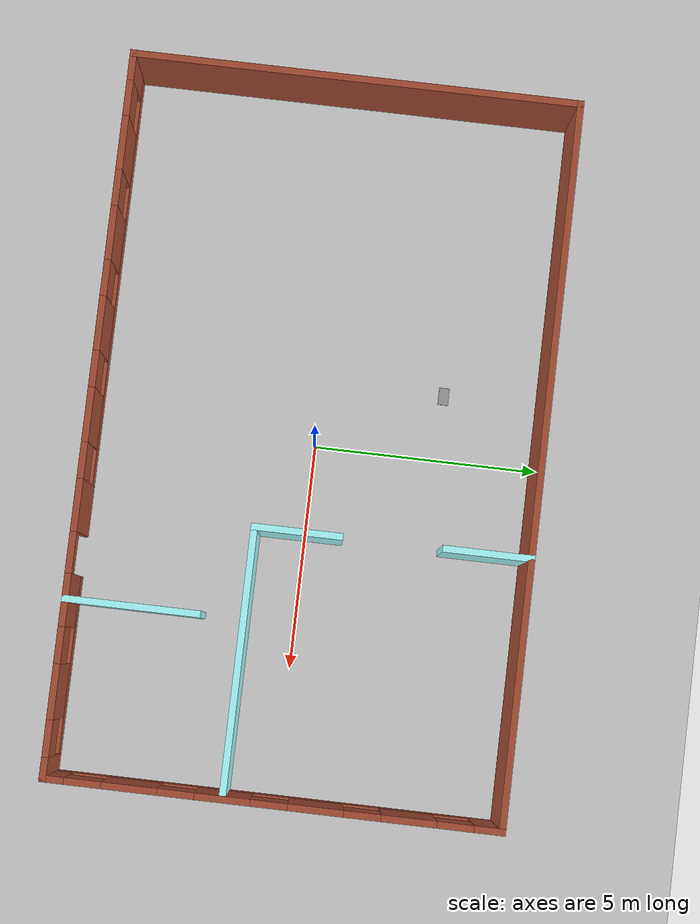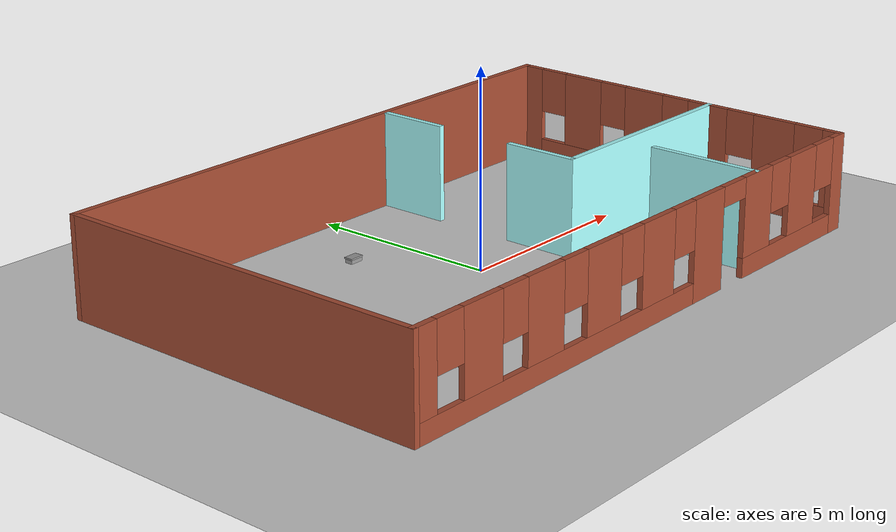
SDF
<sdf version="1.6">
 <world name="default">
  <model name="ground_plane">
   <static>1</static>
   <link name="link">
    <collision name="collision">
     <geometry><plane><normal>0 0 1</normal><size>100 100</size></plane></geometry>
     <surface><friction><ode><mu>100</mu><mu2>50</mu2></ode></friction></surface>
    </collision>
    <visual name="visual">
     <cast_shadows>0</cast_shadows>
     <geometry><plane><normal>0 0 1</normal><size>100 100</size></plane></geometry>
     <material>
      <script><uri>file://media/materials/scripts/gazebo.material</uri><name>Gazebo/Grey</name></script>
     </material>
    </visual>
   </link>
  </model>
  <model name="room1610">
   <link name="Wall_0">
    <collision name="Wall_0_Collision">
     <geometry><box><size>10 0.15 2.5</size></box></geometry>
     <pose>0 0 1.25 0 -0 0</pose>
    </collision>
    <visual name="Wall_0_Visual">
     <pose>0 0 1.25 0 -0 0</pose>
     <geometry><box><size>10 0.15 2.5</size></box></geometry>
     <material>
      <script><uri>file://media/materials/scripts/gazebo.material</uri><name>Gazebo/Bricks</name></script>
      <ambient>1 1 1 1</ambient>
     </material>
     <meta><layer>0</layer></meta>
    </visual>
    <pose>-7.925 0 0 0 0 -1.5708</pose>
   </link>
   <link name="Wall_11">
    <collision name="Wall_11_Collision">
     <geometry><box><size>3 0.15 2.5</size></box></geometry>
     <pose>0 0 1.25 0 -0 0</pose>
    </collision>
    <visual name="Wall_11_Visual">
     <pose>0 0 1.25 0 -0 0</pose>
     <geometry><box><size>3 0.15 2.5</size></box></geometry>
     <material>
      <script><uri>file://media/materials/scripts/gazebo.material</uri><name>Gazebo/Grey</name></script>
      <ambient>0.666667 1 1 1</ambient>
     </material>
     <meta><layer>0</layer></meta>
    </visual>
    <pose>4.075 -3.5 0 0 0 -1.5708</pose>
   </link>
   <link name="Wall_13">
    <collision name="Wall_13_Collision">
     <geometry><box><size>2 0.15 2.5</size></box></geometry>
     <pose>0 0 1.25 0 -0 0</pose>
    </collision>
    <visual name="Wall_13_Visual">
     <pose>0 0 1.25 0 -0 0</pose>
     <geometry><box><size>2 0.15 2.5</size></box></geometry>
     <material>
      <script><uri>file://media/materials/scripts/gazebo.material</uri><name>Gazebo/Grey</name></script>
      <ambient>0.666667 1 1 1</ambient>
     </material>
     <meta><layer>0</layer></meta>
    </visual>
    <pose>2.075 -0.149999 0 0 0 -1.5708</pose>
   </link>
   <link name="Wall_14">
    <collision name="Wall_14_Collision">
     <geometry><box><size>6 0.15 2.5</size></box></geometry>
     <pose>0 0 1.25 0 -0 0</pose>
    </collision>
    <visual name="Wall_14_Visual">
     <pose>0 0 1.25 0 -0 0</pose>
     <geometry><box><size>6 0.15 2.5</size></box></geometry>
     <material>
      <script><uri>file://media/materials/scripts/gazebo.material</uri><name>Gazebo/Grey</name></script>
      <ambient>0.666667 1 1 1</ambient>
     </material>
     <meta><layer>0</layer></meta>
    </visual>
    <pose>5 -1.075 0 0 -0 0</pose>
   </link>
   <link name="Wall_2">
    <collision name="Wall_2_Collision">
     <geometry><box><size>16 0.15 2.5</size></box></geometry>
     <pose>0 0 1.25 0 -0 0</pose>
    </collision>
    <visual name="Wall_2_Visual">
     <pose>0 0 1.25 0 -0 0</pose>
     <geometry><box><size>16 0.15 2.5</size></box></geometry>
     <material>
      <script><uri>file://media/materials/scripts/gazebo.material</uri><name>Gazebo/Bricks</name></script>
      <ambient>1 1 1 1</ambient>
     </material>
     <meta><layer>0</layer></meta>
    </visual>
    <pose>0 4.925 0 0 -0 0</pose>
   </link>
   <link name="Wall_4">
    <pose>7.925 0 0 0 0 -1.5708</pose>
    <visual name="Wall_4_Visual_0">
     <pose>-4.6625 0 1.25 0 -0 0</pose>
     <geometry><box><size>0.675 0.15 2.5</size></box></geometry>
     <material>
      <script><uri>file://media/materials/scripts/gazebo.material</uri><name>Gazebo/Bricks</name></script>
      <ambient>1 1 1 1</ambient>
     </material>
     <meta><layer>0</layer></meta>
    </visual>
    <collision name="Wall_4_Collision_0">
     <geometry><box><size>0.675 0.15 2.5</size></box></geometry>
     <pose>-4.6625 0 1.25 0 -0 0</pose>
    </collision>
    <visual name="Wall_4_Visual_1">
     <pose>0.3375 0 0.25 0 -0 0</pose>
     <geometry><box><size>9.325 0.15 0.5</size></box></geometry>
     <material>
      <script><uri>file://media/materials/scripts/gazebo.material</uri><name>Gazebo/Bricks</name></script>
      <ambient>1 1 1 1</ambient>
     </material>
     <meta><layer>0</layer></meta>
    </visual>
    <collision name="Wall_4_Collision_1">
     <geometry><box><size>9.325 0.15 0.5</size></box></geometry>
     <pose>0.3375 0 0.25 0 -0 0</pose>
    </collision>
    <visual name="Wall_4_Visual_2">
     <pose>-2.925 0 1.5 0 -0 0</pose>
     <geometry><box><size>1.2 0.15 2</size></box></geometry>
     <material>
      <script><uri>file://media/materials/scripts/gazebo.material</uri><name>Gazebo/Bricks</name></script>
      <ambient>1 1 1 1</ambient>
     </material>
     <meta><layer>0</layer></meta>
    </visual>
    <collision name="Wall_4_Collision_2">
     <geometry><box><size>1.2 0.15 2</size></box></geometry>
     <pose>-2.925 0 1.5 0 -0 0</pose>
    </collision>
    <visual name="Wall_4_Visual_3">
     <pose>-0.925 0 1.5 0 -0 0</pose>
     <geometry><box><size>1.2 0.15 2</size></box></geometry>
     <material>
      <script><uri>file://media/materials/scripts/gazebo.material</uri><name>Gazebo/Bricks</name></script>
      <ambient>1 1 1 1</ambient>
     </material>
     <meta><layer>0</layer></meta>
    </visual>
    <collision name="Wall_4_Collision_3">
     <geometry><box><size>1.2 0.15 2</size></box></geometry>
     <pose>-0.925 0 1.5 0 -0 0</pose>
    </collision>
    <visual name="Wall_4_Visual_4">
     <pose>1.075 0 1.5 0 -0 0</pose>
     <geometry><box><size>1.2 0.15 2</size></box></geometry>
     <material>
      <script><uri>file://media/materials/scripts/gazebo.material</uri><name>Gazebo/Bricks</name></script>
      <ambient>1 1 1 1</ambient>
     </material>
     <meta><layer>0</layer></meta>
    </visual>
    <collision name="Wall_4_Collision_4">
     <geometry><box><size>1.2 0.15 2</size></box></geometry>
     <pose>1.075 0 1.5 0 -0 0</pose>
    </collision>
    <visual name="Wall_4_Visual_5">
     <pose>3.075 0 1.5 0 -0 0</pose>
     <geometry><box><size>1.2 0.15 2</size></box></geometry>
     <material>
      <script><uri>file://media/materials/scripts/gazebo.material</uri><name>Gazebo/Bricks</name></script>
      <ambient>1 1 1 1</ambient>
     </material>
     <meta><layer>0</layer></meta>
    </visual>
    <collision name="Wall_4_Collision_5">
     <geometry><box><size>1.2 0.15 2</size></box></geometry>
     <pose>3.075 0 1.5 0 -0 0</pose>
    </collision>
    <visual name="Wall_4_Visual_6">
     <pose>4.7375 0 1.5 0 -0 0</pose>
     <geometry><box><size>0.525 0.15 2</size></box></geometry>
     <material>
      <script><uri>file://media/materials/scripts/gazebo.material</uri><name>Gazebo/Bricks</name></script>
      <ambient>1 1 1 1</ambient>
     </material>
     <meta><layer>0</layer></meta>
    </visual>
    <collision name="Wall_4_Collision_6">
     <geometry><box><size>0.525 0.15 2</size></box></geometry>
     <pose>4.7375 0 1.5 0 -0 0</pose>
    </collision>
    <visual name="Wall_4_Visual_7">
     <pose>-3.925 0 1.9 0 -0 0</pose>
     <geometry><box><size>0.8 0.15 1.2</size></box></geometry>
     <material>
      <script><uri>file://media/materials/scripts/gazebo.material</uri><name>Gazebo/Bricks</name></script>
      <ambient>1 1 1 1</ambient>
     </material>
     <meta><layer>0</layer></meta>
    </visual>
    <collision name="Wall_4_Collision_7">
     <geometry><box><size>0.8 0.15 1.2</size></box></geometry>
     <pose>-3.925 0 1.9 0 -0 0</pose>
    </collision>
    <visual name="Wall_4_Visual_8">
     <pose>-1.925 0 1.9 0 -0 0</pose>
     <geometry><box><size>0.8 0.15 1.2</size></box></geometry>
     <material>
      <script><uri>file://media/materials/scripts/gazebo.material</uri><name>Gazebo/Bricks</name></script>
      <ambient>1 1 1 1</ambient>
     </material>
     <meta><layer>0</layer></meta>
    </visual>
    <collision name="Wall_4_Collision_8">
     <geometry><box><size>0.8 0.15 1.2</size></box></geometry>
     <pose>-1.925 0 1.9 0 -0 0</pose>
    </collision>
    <visual name="Wall_4_Visual_9">
     <pose>0.075 0 1.9 0 -0 0</pose>
     <geometry><box><size>0.8 0.15 1.2</size></box></geometry>
     <material>
      <script><uri>file://media/materials/scripts/gazebo.material</uri><name>Gazebo/Bricks</name></script>
      <ambient>1 1 1 1</ambient>
     </material>
     <meta><layer>0</layer></meta>
    </visual>
    <collision name="Wall_4_Collision_9">
     <geometry><box><size>0.8 0.15 1.2</size></box></geometry>
     <pose>0.075 0 1.9 0 -0 0</pose>
    </collision>
    <visual name="Wall_4_Visual_10">
     <pose>2.075 0 1.9 0 -0 0</pose>
     <geometry><box><size>0.8 0.15 1.2</size></box></geometry>
     <material>
      <script><uri>file://media/materials/scripts/gazebo.material</uri><name>Gazebo/Bricks</name></script>
      <ambient>1 1 1 1</ambient>
     </material>
     <meta><layer>0</layer></meta>
    </visual>
    <collision name="Wall_4_Collision_10">
     <geometry><box><size>0.8 0.15 1.2</size></box></geometry>
     <pose>2.075 0 1.9 0 -0 0</pose>
    </collision>
    <visual name="Wall_4_Visual_11">
     <pose>4.075 0 1.9 0 -0 0</pose>
     <geometry><box><size>0.8 0.15 1.2</size></box></geometry>
     <material>
      <script><uri>file://media/materials/scripts/gazebo.material</uri><name>Gazebo/Bricks</name></script>
      <ambient>1 1 1 1</ambient>
     </material>
     <meta><layer>0</layer></meta>
    </visual>
    <collision name="Wall_4_Collision_11">
     <geometry><box><size>0.8 0.15 1.2</size></box></geometry>
     <pose>4.075 0 1.9 0 -0 0</pose>
    </collision>
   </link>
   <link name="Wall_5">
    <pose>0 -4.925 0 0 -0 3.14159</pose>
    <visual name="Wall_5_Visual_0">
     <pose>-7.7375 0 1.25 0 -0 0</pose>
     <geometry><box><size>0.525 0.15 2.5</size></box></geometry>
     <material>
      <script><uri>file://media/materials/scripts/gazebo.material</uri><name>Gazebo/Bricks</name></script>
      <ambient>1 1 1 1</ambient>
     </material>
     <meta><layer>0</layer></meta>
    </visual>
    <collision name="Wall_5_Collision_0">
     <geometry><box><size>0.525 0.15 2.5</size></box></geometry>
     <pose>-7.7375 0 1.25 0 -0 0</pose>
    </collision>
    <visual name="Wall_5_Visual_1">
     <pose>-2.05 0 1.25 0 -0 0</pose>
     <geometry><box><size>1.15 0.15 2.5</size></box></geometry>
     <material>
      <script><uri>file://media/materials/scripts/gazebo.material</uri><name>Gazebo/Bricks</name></script>
      <ambient>1 1 1 1</ambient>
     </material>
     <meta><layer>0</layer></meta>
    </visual>
    <collision name="Wall_5_Collision_1">
     <geometry><box><size>1.15 0.15 2.5</size></box></geometry>
     <pose>-2.05 0 1.25 0 -0 0</pose>
    </collision>
    <visual name="Wall_5_Visual_2">
     <pose>-5.5 0 0.25 0 -0 0</pose>
     <geometry><box><size>3.95 0.15 0.5</size></box></geometry>
     <material>
      <script><uri>file://media/materials/scripts/gazebo.material</uri><name>Gazebo/Bricks</name></script>
      <ambient>1 1 1 1</ambient>
     </material>
     <meta><layer>0</layer></meta>
    </visual>
    <collision name="Wall_5_Collision_2">
     <geometry><box><size>3.95 0.15 0.5</size></box></geometry>
     <pose>-5.5 0 0.25 0 -0 0</pose>
    </collision>
    <visual name="Wall_5_Visual_3">
     <pose>3.2625 0 0.25 0 -0 0</pose>
     <geometry><box><size>9.475 0.15 0.5</size></box></geometry>
     <material>
      <script><uri>file://media/materials/scripts/gazebo.material</uri><name>Gazebo/Bricks</name></script>
      <ambient>1 1 1 1</ambient>
     </material>
     <meta><layer>0</layer></meta>
    </visual>
    <collision name="Wall_5_Collision_3">
     <geometry><box><size>9.475 0.15 0.5</size></box></geometry>
     <pose>3.2625 0 0.25 0 -0 0</pose>
    </collision>
    <visual name="Wall_5_Visual_4">
     <pose>-6.075 0 1.5 0 -0 0</pose>
     <geometry><box><size>1.2 0.15 2</size></box></geometry>
     <material>
      <script><uri>file://media/materials/scripts/gazebo.material</uri><name>Gazebo/Bricks</name></script>
      <ambient>1 1 1 1</ambient>
     </material>
     <meta><layer>0</layer></meta>
    </visual>
    <collision name="Wall_5_Collision_4">
     <geometry><box><size>1.2 0.15 2</size></box></geometry>
     <pose>-6.075 0 1.5 0 -0 0</pose>
    </collision>
    <visual name="Wall_5_Visual_5">
     <pose>-4.1 0 1.5 0 -0 0</pose>
     <geometry><box><size>1.15 0.15 2</size></box></geometry>
     <material>
      <script><uri>file://media/materials/scripts/gazebo.material</uri><name>Gazebo/Bricks</name></script>
      <ambient>1 1 1 1</ambient>
     </material>
     <meta><layer>0</layer></meta>
    </visual>
    <collision name="Wall_5_Collision_5">
     <geometry><box><size>1.15 0.15 2</size></box></geometry>
     <pose>-4.1 0 1.5 0 -0 0</pose>
    </collision>
    <visual name="Wall_5_Visual_6">
     <pose>-4.1 0 1.5 0 -0 0</pose>
     <geometry><box><size>1.15 0.15 2</size></box></geometry>
     <material>
      <script><uri>file://media/materials/scripts/gazebo.material</uri><name>Gazebo/Bricks</name></script>
      <ambient>1 1 1 1</ambient>
     </material>
     <meta><layer>0</layer></meta>
    </visual>
    <collision name="Wall_5_Collision_6">
     <geometry><box><size>1.15 0.15 2</size></box></geometry>
     <pose>-4.1 0 1.5 0 -0 0</pose>
    </collision>
    <visual name="Wall_5_Visual_7">
     <pose>-0.075 0 1.5 0 -0 0</pose>
     <geometry><box><size>1.2 0.15 2</size></box></geometry>
     <material>
      <script><uri>file://media/materials/scripts/gazebo.material</uri><name>Gazebo/Bricks</name></script>
      <ambient>1 1 1 1</ambient>
     </material>
     <meta><layer>0</layer></meta>
    </visual>
    <collision name="Wall_5_Collision_7">
     <geometry><box><size>1.2 0.15 2</size></box></geometry>
     <pose>-0.075 0 1.5 0 -0 0</pose>
    </collision>
    <visual name="Wall_5_Visual_8">
     <pose>1.925 0 1.5 0 -0 0</pose>
     <geometry><box><size>1.2 0.15 2</size></box></geometry>
     <material>
      <script><uri>file://media/materials/scripts/gazebo.material</uri><name>Gazebo/Bricks</name></script>
      <ambient>1 1 1 1</ambient>
     </material>
     <meta><layer>0</layer></meta>
    </visual>
    <collision name="Wall_5_Collision_8">
     <geometry><box><size>1.2 0.15 2</size></box></geometry>
     <pose>1.925 0 1.5 0 -0 0</pose>
    </collision>
    <visual name="Wall_5_Visual_9">
     <pose>3.925 0 1.5 0 -0 0</pose>
     <geometry><box><size>1.2 0.15 2</size></box></geometry>
     <material>
      <script><uri>file://media/materials/scripts/gazebo.material</uri><name>Gazebo/Bricks</name></script>
      <ambient>1 1 1 1</ambient>
     </material>
     <meta><layer>0</layer></meta>
    </visual>
    <collision name="Wall_5_Collision_9">
     <geometry><box><size>1.2 0.15 2</size></box></geometry>
     <pose>3.925 0 1.5 0 -0 0</pose>
    </collision>
    <visual name="Wall_5_Visual_10">
     <pose>5.925 0 1.5 0 -0 0</pose>
     <geometry><box><size>1.2 0.15 2</size></box></geometry>
     <material>
      <script><uri>file://media/materials/scripts/gazebo.material</uri><name>Gazebo/Bricks</name></script>
      <ambient>1 1 1 1</ambient>
     </material>
     <meta><layer>0</layer></meta>
    </visual>
    <collision name="Wall_5_Collision_10">
     <geometry><box><size>1.2 0.15 2</size></box></geometry>
     <pose>5.925 0 1.5 0 -0 0</pose>
    </collision>
    <visual name="Wall_5_Visual_11">
     <pose>7.6625 0 1.5 0 -0 0</pose>
     <geometry><box><size>0.675 0.15 2</size></box></geometry>
     <material>
      <script><uri>file://media/materials/scripts/gazebo.material</uri><name>Gazebo/Bricks</name></script>
      <ambient>1 1 1 1</ambient>
     </material>
     <meta><layer>0</layer></meta>
    </visual>
    <collision name="Wall_5_Collision_11">
     <geometry><box><size>0.675 0.15 2</size></box></geometry>
     <pose>7.6625 0 1.5 0 -0 0</pose>
    </collision>
    <visual name="Wall_5_Visual_12">
     <pose>-7.075 0 1.9 0 -0 0</pose>
     <geometry><box><size>0.8 0.15 1.2</size></box></geometry>
     <material>
      <script><uri>file://media/materials/scripts/gazebo.material</uri><name>Gazebo/Bricks</name></script>
      <ambient>1 1 1 1</ambient>
     </material>
     <meta><layer>0</layer></meta>
    </visual>
    <collision name="Wall_5_Collision_12">
     <geometry><box><size>0.8 0.15 1.2</size></box></geometry>
     <pose>-7.075 0 1.9 0 -0 0</pose>
    </collision>
    <visual name="Wall_5_Visual_13">
     <pose>-1.075 0 1.9 0 -0 0</pose>
     <geometry><box><size>0.8 0.15 1.2</size></box></geometry>
     <material>
      <script><uri>file://media/materials/scripts/gazebo.material</uri><name>Gazebo/Bricks</name></script>
      <ambient>1 1 1 1</ambient>
     </material>
     <meta><layer>0</layer></meta>
    </visual>
    <collision name="Wall_5_Collision_13">
     <geometry><box><size>0.8 0.15 1.2</size></box></geometry>
     <pose>-1.075 0 1.9 0 -0 0</pose>
    </collision>
    <visual name="Wall_5_Visual_14">
     <pose>-5.075 0 1.9 0 -0 0</pose>
     <geometry><box><size>0.8 0.15 1.2</size></box></geometry>
     <material>
      <script><uri>file://media/materials/scripts/gazebo.material</uri><name>Gazebo/Bricks</name></script>
      <ambient>1 1 1 1</ambient>
     </material>
     <meta><layer>0</layer></meta>
    </visual>
    <collision name="Wall_5_Collision_14">
     <geometry><box><size>0.8 0.15 1.2</size></box></geometry>
     <pose>-5.075 0 1.9 0 -0 0</pose>
    </collision>
    <visual name="Wall_5_Visual_15">
     <pose>0.925 0 1.9 0 -0 0</pose>
     <geometry><box><size>0.8 0.15 1.2</size></box></geometry>
     <material>
      <script><uri>file://media/materials/scripts/gazebo.material</uri><name>Gazebo/Bricks</name></script>
      <ambient>1 1 1 1</ambient>
     </material>
     <meta><layer>0</layer></meta>
    </visual>
    <collision name="Wall_5_Collision_15">
     <geometry><box><size>0.8 0.15 1.2</size></box></geometry>
     <pose>0.925 0 1.9 0 -0 0</pose>
    </collision>
    <visual name="Wall_5_Visual_16">
     <pose>2.925 0 1.9 0 -0 0</pose>
     <geometry><box><size>0.8 0.15 1.2</size></box></geometry>
     <material>
      <script><uri>file://media/materials/scripts/gazebo.material</uri><name>Gazebo/Bricks</name></script>
      <ambient>1 1 1 1</ambient>
     </material>
     <meta><layer>0</layer></meta>
    </visual>
    <collision name="Wall_5_Collision_16">
     <geometry><box><size>0.8 0.15 1.2</size></box></geometry>
     <pose>2.925 0 1.9 0 -0 0</pose>
    </collision>
    <visual name="Wall_5_Visual_17">
     <pose>4.925 0 1.9 0 -0 0</pose>
     <geometry><box><size>0.8 0.15 1.2</size></box></geometry>
     <material>
      <script><uri>file://media/materials/scripts/gazebo.material</uri><name>Gazebo/Bricks</name></script>
      <ambient>1 1 1 1</ambient>
     </material>
     <meta><layer>0</layer></meta>
    </visual>
    <collision name="Wall_5_Collision_17">
     <geometry><box><size>0.8 0.15 1.2</size></box></geometry>
     <pose>4.925 0 1.9 0 -0 0</pose>
    </collision>
    <visual name="Wall_5_Visual_18">
     <pose>6.925 0 1.9 0 -0 0</pose>
     <geometry><box><size>0.8 0.15 1.2</size></box></geometry>
     <material>
      <script><uri>file://media/materials/scripts/gazebo.material</uri><name>Gazebo/Bricks</name></script>
      <ambient>1 1 1 1</ambient>
     </material>
     <meta><layer>0</layer></meta>
    </visual>
    <collision name="Wall_5_Collision_18">
     <geometry><box><size>0.8 0.15 1.2</size></box></geometry>
     <pose>6.925 0 1.9 0 -0 0</pose>
    </collision>
    <visual name="Wall_5_Visual_19">
     <pose>-3.075 0 2.25 0 -0 0</pose>
     <geometry><box><size>0.9 0.15 0.5</size></box></geometry>
     <material>
      <script><uri>file://media/materials/scripts/gazebo.material</uri><name>Gazebo/Bricks</name></script>
      <ambient>1 1 1 1</ambient>
     </material>
     <meta><layer>0</layer></meta>
    </visual>
    <collision name="Wall_5_Collision_19">
     <geometry><box><size>0.9 0.15 0.5</size></box></geometry>
     <pose>-3.075 0 2.25 0 -0 0</pose>
    </collision>
    <visual name="Wall_5_Visual_20">
     <pose>-3.075 0 2.25 0 -0 0</pose>
     <geometry><box><size>0.9 0.15 0.5</size></box></geometry>
     <material>
      <script><uri>file://media/materials/scripts/gazebo.material</uri><name>Gazebo/Bricks</name></script>
      <ambient>1 1 1 1</ambient>
     </material>
     <meta><layer>0</layer></meta>
    </visual>
    <collision name="Wall_5_Collision_20">
     <geometry><box><size>0.9 0.15 0.5</size></box></geometry>
     <pose>-3.075 0 2.25 0 -0 0</pose>
    </collision>
   </link>
   <link name="Wall_7">
    <collision name="Wall_7_Collision">
     <geometry><box><size>2 0.15 2.5</size></box></geometry>
     <pose>0 0 1.25 0 -0 0</pose>
    </collision>
    <visual name="Wall_7_Visual">
     <pose>0 0 1.25 0 -0 0</pose>
     <geometry><box><size>2 0.15 2.5</size></box></geometry>
     <material>
      <script><uri>file://media/materials/scripts/gazebo.material</uri><name>Gazebo/Grey</name></script>
      <ambient>0.666667 1 1 1</ambient>
     </material>
     <meta><layer>0</layer></meta>
    </visual>
    <pose>2.075 4 0 0 0 -1.5708</pose>
   </link>
   <static>1</static>
  </model>
  <model name="shoebox_0">
   <link name="link_0">
    <pose>0 -0.00025 0.0625 0 -0 0</pose>
    <inertial>
     <mass>1</mass>
     <inertia>
      <ixx>0.166667</ixx>
      <ixy>0</ixy>
      <ixz>0</ixz>
      <iyy>0.166667</iyy>
      <iyz>0</iyz>
      <izz>0.166667</izz>
     </inertia>
    </inertial>
    <visual name="visual">
     <geometry><box><size>0.36 0.21 0.135</size></box></geometry>
     <material>
      <lighting>1</lighting>
      <script><uri>file://media/materials/scripts/gazebo.material</uri><name>Gazebo/Grey</name></script>
      <shader type="pixel"><normal_map>__default__</normal_map></shader>
      <ambient>0.3 0.3 0.3 1</ambient>
      <diffuse>0.7 0.7 0.7 1</diffuse>
      <specular>0.01 0.01 0.01 1</specular>
      <emissive>0 0 0 1</emissive>
     </material>
    </visual>
    <collision name="collision">
     <geometry><box><size>0.36 0.21 0.135</size></box></geometry>
     <surface>
      <friction>
       <ode><mu>1</mu><mu2>1</mu2><fdir1>0 0 0</fdir1><slip1>0</slip1><slip2>0</slip2></ode>
       <torsional>
        <coefficient>1</coefficient>
        <patch_radius>0</patch_radius>
        <surface_radius>0</surface_radius>
        <use_patch_radius>1</use_patch_radius>
        <ode><slip>0</slip></ode>
       </torsional>
      </friction>
      <bounce><restitution_coefficient>0</restitution_coefficient><threshold>1e+06</threshold></bounce>
      <contact>
       <collide_without_contact>0</collide_without_contact>
       <collide_without_contact_bitmask>1</collide_without_contact_bitmask>
       <collide_bitmask>1</collide_bitmask>
       <ode>
        <soft_cfm>0</soft_cfm>
        <soft_erp>0.2</soft_erp>
        <kp>1e+13</kp>
        <kd>1</kd>
        <max_vel>0.01</max_vel>
        <min_depth>0</min_depth>
       </ode>
       <bullet>
        <split_impulse>1</split_impulse>
        <split_impulse_penetration_threshold>-0.01</split_impulse_penetration_threshold>
        <soft_cfm>0</soft_cfm>
        <soft_erp>0.2</soft_erp>
        <kp>1e+13</kp>
        <kd>1</kd>
       </bullet>
      </contact>
     </surface>
    </collision>
   </link>
   <link name="link_1">
    <pose>0 0.00525 0.1125 0 -0 0</pose>
    <inertial>
     <mass>1</mass>
     <inertia>
      <ixx>0.166667</ixx>
      <ixy>0</ixy>
      <ixz>0</ixz>
      <iyy>0.166667</iyy>
      <iyz>0</iyz>
      <izz>0.166667</izz>
     </inertia>
    </inertial>
    <visual name="visual">
     <geometry><box><size>0.38 0.23 0.04</size></box></geometry>
     <material>
      <lighting>1</lighting>
      <script><uri>file://media/materials/scripts/gazebo.material</uri><name>Gazebo/Grey</name></script>
      <shader type="pixel"><normal_map>__default__</normal_map></shader>
      <ambient>0.3 0.3 0.3 1</ambient>
      <diffuse>0.7 0.7 0.7 1</diffuse>
      <specular>0.01 0.01 0.01 1</specular>
      <emissive>0 0 0 1</emissive>
     </material>
    </visual>
    <collision name="collision">
     <geometry><box><size>0.38 0.23 0.04</size></box></geometry>
     <surface>
      <friction>
       <ode><mu>1</mu><mu2>1</mu2><fdir1>0 0 0</fdir1><slip1>0</slip1><slip2>0</slip2></ode>
       <torsional>
        <coefficient>1</coefficient>
        <patch_radius>0</patch_radius>
        <surface_radius>0</surface_radius>
        <use_patch_radius>1</use_patch_radius>
        <ode><slip>0</slip></ode>
       </torsional>
      </friction>
      <bounce><restitution_coefficient>0</restitution_coefficient><threshold>1e+06</threshold></bounce>
      <contact>
       <collide_without_contact>0</collide_without_contact>
       <collide_without_contact_bitmask>1</collide_without_contact_bitmask>
       <collide_bitmask>1</collide_bitmask>
       <ode>
        <soft_cfm>0</soft_cfm>
        <soft_erp>0.2</soft_erp>
        <kp>1e+13</kp>
        <kd>1</kd>
        <max_vel>0.01</max_vel>
        <min_depth>0</min_depth>
       </ode>
       <bullet>
        <split_impulse>1</split_impulse>
        <split_impulse_penetration_threshold>-0.01</split_impulse_penetration_threshold>
        <soft_cfm>0</soft_cfm>
        <soft_erp>0.2</soft_erp>
        <kp>1e+13</kp>
        <kd>1</kd>
       </bullet>
      </contact>
     </surface>
    </collision>
   </link>
   <joint name="link_0_JOINT_1" type="fixed">
    <parent>link_0</parent>
    <child>link_1</child>
    <physics>
     <ode><limit><cfm>0</cfm><erp>0.2</erp></limit><suspension><cfm>0</cfm><erp>0.2</erp></suspension></ode>
    </physics>
   </joint>
   <static>1</static>
   <pose>-1.4613 2.75181 0 0 -0 0</pose>
  </model>
 </world>
</sdf>
